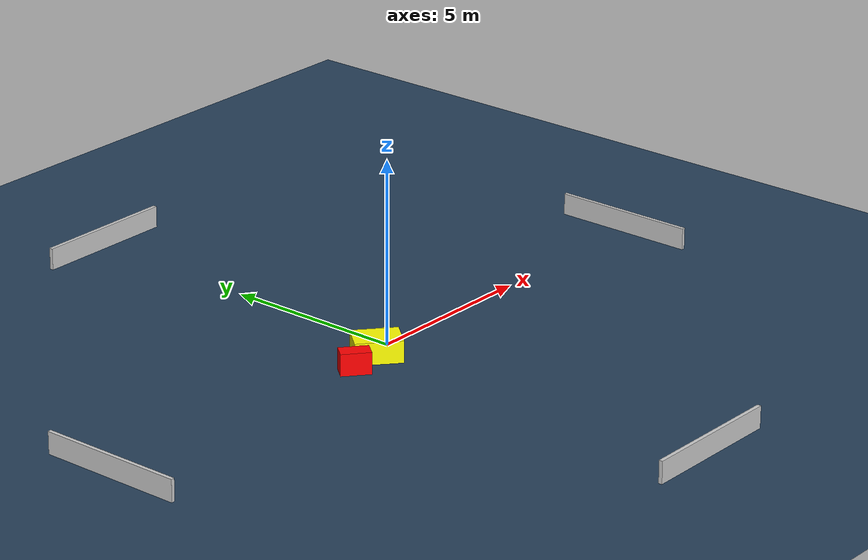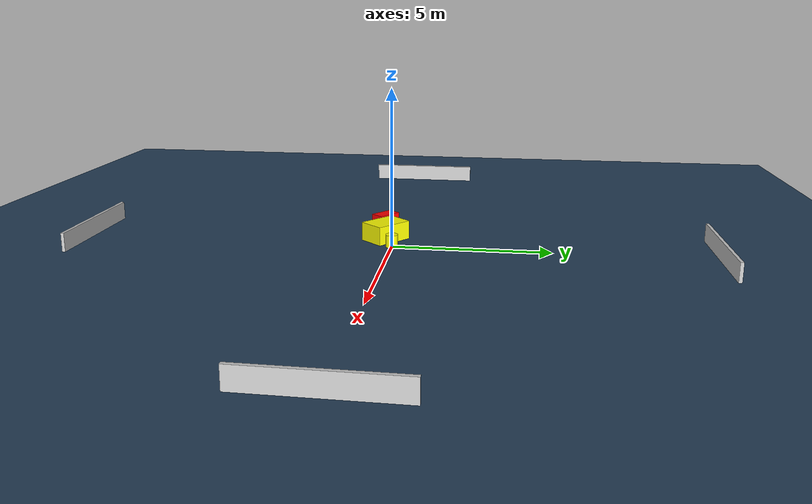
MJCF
<?xml version="1.0" ?>
<mujoco model="generated_environment">
  <option timestep="0.01" integrator="RK4" cone="elliptic"/>
  <default>
    <geom density="1"/>
  </default>
  <asset>
    <texture builtin="gradient" height="3072" name="skybox" rgb1="0.3 0.5 0.7" rgb2="0 0 0" type="skybox" width="512"/>
    <texture builtin="checker" height="300" name="groundplane" rgb1="0.2 0.3 0.4" rgb2="0.1 0.2 0.3" type="2d" width="300"/>
    <material name="groundplane" reflectance="0.2" texrepeat="5 5" texture="groundplane"/>
  </asset>
  <worldbody>
    <light dir="0 0 -1" directional="true" pos="0 0 1.5"/>
    <geom condim="3" friction="0.5 0.005 0.001" material="groundplane" name="floor" pos="0 0 0" size="0 0 0.05" type="plane"/>
    <body name="walls">
      <geom name="wall_1" condim="4" pos="-10.0 0.0 0.3" rgba="0.800000011920929 0.800000011920929 0.800000011920929 1.0" size="0.05 2.0 0.3" type="box"/>
      <geom name="wall_2" condim="4" pos="10.0 0.0 0.3" rgba="0.800000011920929 0.800000011920929 0.800000011920929 1.0" size="0.05 2.0 0.3" type="box"/>
      <geom name="wall_3" condim="4" pos="0.0 -10.0 0.3" rgba="0.800000011920929 0.800000011920929 0.800000011920929 1.0" size="2.0 0.05 0.3" type="box"/>
      <geom name="wall_4" condim="4" pos="0.0 10.0 0.3" rgba="0.800000011920929 0.800000011920929 0.800000011920929 1.0" size="2.0 0.05 0.3" type="box"/>
    </body>
    <body name="robot">
      <joint name="joint_x" type="slide" pos="0 0 0" axis="1 0 0"/>
      <joint name="joint_y" type="slide" pos="0 0 0" axis="0 1 0"/>
      <geom name="robot" type="cylinder" pos="0.0 0.0 0.2" size="0.2 0.2 0.0" mass="5.0" friction="1.0 0.005 0.0001" condim="4" rgba="1.0 1.0 0.0 1.0"/>
    </body>
    <body name="obstacle_1_movable">
      <geom name="obstacle_1_movable" condim="4" pos="-0.7743617841949871 -0.30908002513081284 0.3" euler="0 0 319.3089968371694" friction="0.0 0.005 0.001" rgba="1.0 1.0 0.0 1.0" size="0.6292680302922287 0.4425326679631663 0.3" type="box" mass="0.1"/>
      <joint type="free"/>
    </body>
    <body name="obstacle_2_static">
      <geom name="obstacle_2_static" condim="4" pos="-1.8009455662986107 -0.4644931756579284 0.3" euler="0 0 230.4082367997195" friction="0.0 0.005 0.001" rgba="1.0 0.0 0.0 1.0" size="0.2231679644348245 0.39767109035516546 0.3" type="box"/>
    </body>
  </worldbody>
  <actuator>
    <motor name="actuator_x" joint="joint_x" gear="1" ctrlrange="-1 1"/>
    <motor name="actuator_y" joint="joint_y" gear="1" ctrlrange="-1 1"/>
  </actuator>
</mujoco>
